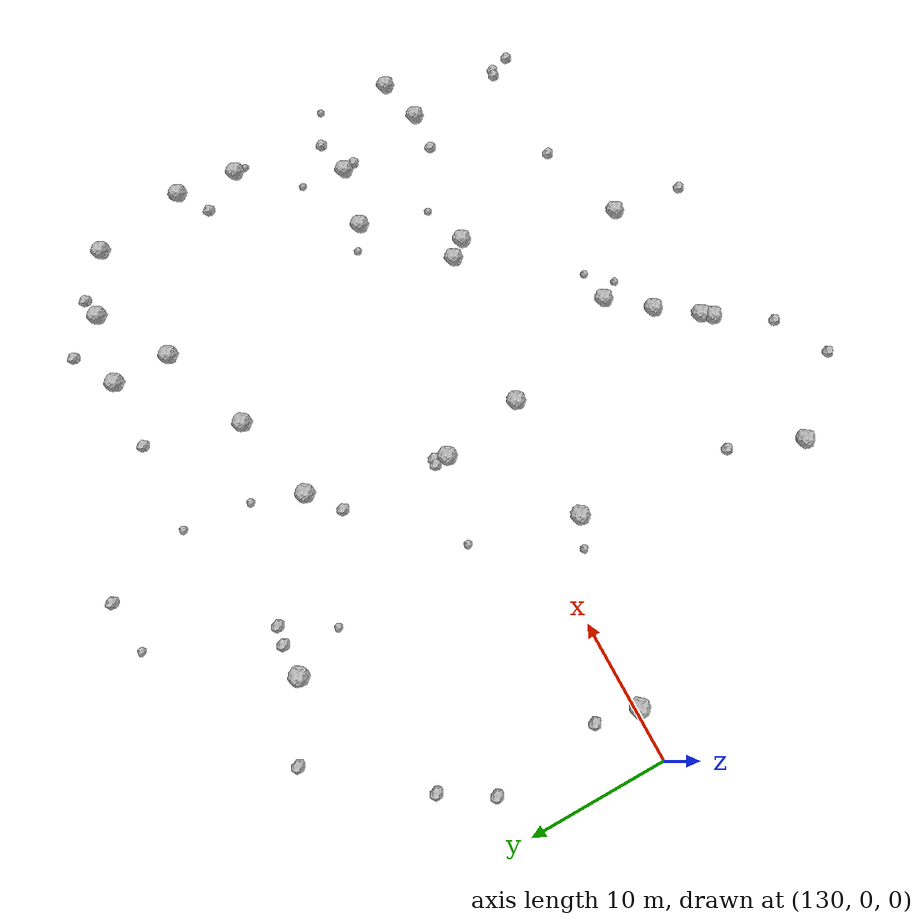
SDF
<sdf version="1.6">
 <world name="default">
  <include><uri>model://sun</uri></include>
  <model name="rock1_4_2">
   <include><uri>model://rock1</uri><pose>186.2464689613487 -7.301325389295236 0.5 0 0 0</pose></include>
  </model>
  <model name="rock1_4_3">
   <include><uri>model://rock1</uri><pose>171.64689725641176 22.413009952242632 0.5 0 0 0</pose></include>
  </model>
  <model name="rock1_4_4">
   <include><uri>model://rock1</uri><pose>167.00148505577474 -18.20192116742143 0.5 0 0 0</pose></include>
  </model>
  <model name="rock1_4_5">
   <include><uri>model://rock1</uri><pose>155.08395413666193 3.0549888798622717 0.5 0 0 0</pose></include>
  </model>
  <model name="rock1_4_6">
   <include><uri>model://rock1</uri><pose>164.35093658210803 15.23540274397623 0.5 0 0 0</pose></include>
  </model>
  <model name="rock1_4_7">
   <include><uri>model://rock1</uri><pose>169.21905474929548 -4.850321246496943 0.5 0 0 0</pose></include>
  </model>
  <model name="rock1_4_8">
   <include><uri>model://rock1</uri><pose>182.588270760284 19.384050497185257 0.5 0 0 0</pose></include>
  </model>
  <model name="rock1_4_9">
   <include><uri>model://rock1</uri><pose>146.80754964813917 -3.292090063591708 0.5 0 0 0</pose></include>
  </model>
  <model name="rock1_4_10">
   <include><uri>model://rock1</uri><pose>180.41627406185384 -0.7043355286861903 0.5 0 0 0</pose></include>
  </model>
  <model name="rock1_4_11">
   <include><uri>model://rock1</uri><pose>171.88849447410286 18.019917380509177 0.5 0 0 0</pose></include>
  </model>
  <model name="rock1_4_12">
   <include><uri>model://rock1</uri><pose>184.34053144238862 7.2152267753786035 0.5 0 0 0</pose></include>
  </model>
  <model name="rock1_4_13">
   <include><uri>model://rock1</uri><pose>146.00642176050798 19.023878575789723 0.5 0 0 0</pose></include>
  </model>
  <model name="rock1_4_14">
   <include><uri>model://rock1</uri><pose>184.59700736479746 12.078308972455083 0.5 0 0 0</pose></include>
  </model>
  <model name="rock1_4_15">
   <include><uri>model://rock1</uri><pose>144.09350727045214 -20.698135484319483 0.5 0 0 0</pose></include>
  </model>
  <model name="rock1_4_16">
   <include><uri>model://rock1</uri><pose>156.17243784660675 -19.369085509314875 0.5 0 0 0</pose></include>
  </model>
  <model name="rock1_4_17">
   <include><uri>model://rock1</uri><pose>177.44289908200625 21.620254565218545 0.5 0 0 0</pose></include>
  </model>
  <model name="rock1_4_18">
   <include><uri>model://rock1</uri><pose>156.51774521517984 -3.432915218404524 0.5 0 0 0</pose></include>
  </model>
  <model name="rock1_4_19">
   <include><uri>model://rock1</uri><pose>182.42266044583602 -8.135136150741005 0.5 0 0 0</pose></include>
  </model>
  <model name="rock1_4_20">
   <include><uri>model://rock1</uri><pose>175.28417053724445 0.3814168161132443 0.5 0 0 0</pose></include>
  </model>
  <model name="rock1_4_21">
   <include><uri>model://rock1</uri><pose>160.7313119396242 -13.460513612546677 0.5 0 0 0</pose></include>
  </model>
  <model name="rock1_4_22">
   <include><uri>model://rock1</uri><pose>170.36536571295912 -6.167824820451759 0.5 0 0 0</pose></include>
  </model>
  <model name="rock1_4_23">
   <include><uri>model://rock1</uri><pose>155.61729167370237 -20.11167653174723 0.5 0 0 0</pose></include>
  </model>
  <model name="rock1_4_24">
   <include><uri>model://rock1</uri><pose>133.65765308649003 -0.2149136522219024 0.5 0 0 0</pose></include>
  </model>
  <model name="rock1_4_25">
   <include><uri>model://rock1</uri><pose>157.3277387240569 13.38084580555902 0.5 0 0 0</pose></include>
  </model>
  <model name="rock1_4_26">
   <include><uri>model://rock1</uri><pose>158.27116242116472 -16.425373445181528 0.5 0 0 0</pose></include>
  </model>
  <model name="rock2_4_0">
   <include><uri>model://rock2</uri><pose>155.35001922294205 3.9928033350846377 0.3 0 0 0</pose></include>
  </model>
  <model name="rock2_4_1">
   <include><uri>model://rock2</uri><pose>174.132558881422 -16.13023922726648 0.3 0 0 0</pose></include>
  </model>
  <model name="rock2_4_2">
   <include><uri>model://rock2</uri><pose>180.66773425457114 -1.6617529767789527 0.3 0 0 0</pose></include>
  </model>
  <model name="rock2_4_3">
   <include><uri>model://rock2</uri><pose>174.9374516045398 24.452750905031074 0.3 0 0 0</pose></include>
  </model>
  <model name="rock2_4_4">
   <include><uri>model://rock2</uri><pose>184.02623053925657 -17.658734936669937 0.3 0 0 0</pose></include>
  </model>
  <model name="rock2_4_5">
   <include><uri>model://rock2</uri><pose>182.9571530582814 -15.873548408330818 0.3 0 0 0</pose></include>
  </model>
  <model name="rock2_4_6">
   <include><uri>model://rock2</uri><pose>148.38290555893968 19.123266469049177 0.3 0 0 0</pose></include>
  </model>
  <model name="rock2_4_7">
   <include><uri>model://rock2</uri><pose>179.09391950085342 -7.8932600802266535 0.3 0 0 0</pose></include>
  </model>
  <model name="rock2_4_8">
   <include><uri>model://rock2</uri><pose>134.1660585934325 2.9068815484296238 0.3 0 0 0</pose></include>
  </model>
  <model name="rock2_4_9">
   <include><uri>model://rock2</uri><pose>140.84009826670413 21.44909388405302 0.3 0 0 0</pose></include>
  </model>
  <model name="rock2_4_10">
   <include><uri>model://rock2</uri><pose>183.4366169725365 -16.02845349859192 0.3 0 0 0</pose></include>
  </model>
  <model name="rock2_4_11">
   <include><uri>model://rock2</uri><pose>182.49595950785707 19.3150578806222 0.3 0 0 0</pose></include>
  </model>
  <model name="rock2_4_12">
   <include><uri>model://rock2</uri><pose>166.0576216283341 22.35122658784377 0.3 0 0 0</pose></include>
  </model>
  <model name="rock2_4_13">
   <include><uri>model://rock2</uri><pose>146.10998808005812 -15.273588873812642 0.3 0 0 0</pose></include>
  </model>
  <model name="rock2_4_14">
   <include><uri>model://rock2</uri><pose>149.05193392368167 -26.25639621899061 0.3 0 0 0</pose></include>
  </model>
  <model name="rock2_4_15">
   <include><uri>model://rock2</uri><pose>149.702963055113 18.93457489149157 0.3 0 0 0</pose></include>
  </model>
  <model name="rock2_4_16">
   <include><uri>model://rock2</uri><pose>182.0180601181525 10.46104698147657 0.3 0 0 0</pose></include>
  </model>
  <model name="rock2_4_17">
   <include><uri>model://rock2</uri><pose>133.23664658873386 10.791487576115259 0.3 0 0 0</pose></include>
  </model>
  <model name="rock2_4_18">
   <include><uri>model://rock2</uri><pose>155.00650762971887 11.463930278922419 0.3 0 0 0</pose></include>
  </model>
  <model name="rock2_4_19">
   <include><uri>model://rock2</uri><pose>154.8958430708037 4.089806871987946 0.3 0 0 0</pose></include>
  </model>
  <model name="rock2_4_20">
   <include><uri>model://rock2</uri><pose>156.43421041354082 28.429039460350793 0.3 0 0 0</pose></include>
  </model>
  <model name="rock2_4_21">
   <include><uri>model://rock2</uri><pose>184.5327588286435 12.343055705664739 0.3 0 0 0</pose></include>
  </model>
  <model name="rock2_4_22">
   <include><uri>model://rock2</uri><pose>183.38740756186948 -0.07685520122383593 0.3 0 0 0</pose></include>
  </model>
  <model name="rock2_4_23">
   <include><uri>model://rock2</uri><pose>153.11602831475943 -24.140659303725247 0.3 0 0 0</pose></include>
  </model>
  <model name="rock2_4_24">
   <include><uri>model://rock2</uri><pose>179.04912986330578 22.015135480559223 0.3 0 0 0</pose></include>
  </model>
  <model name="rock2_4_25">
   <include><uri>model://rock2</uri><pose>166.4417468218809 -23.877877191737547 0.3 0 0 0</pose></include>
  </model>
  <model name="rock2_4_26">
   <include><uri>model://rock2</uri><pose>135.2119759331495 14.186077502435737 0.3 0 0 0</pose></include>
  </model>
  <model name="rock3_4_0">
   <include><uri>model://rock3</uri><pose>152.40947561456213 27.818986824356607 0.2 0 0 0</pose></include>
  </model>
  <model name="rock3_4_1">
   <include><uri>model://rock3</uri><pose>173.86931536847754 -5.041945569858811 0.2 0 0 0</pose></include>
  </model>
  <model name="rock3_4_2">
   <include><uri>model://rock3</uri><pose>148.6457958767106 4.709683121342607 0.2 0 0 0</pose></include>
  </model>
  <model name="rock3_4_3">
   <include><uri>model://rock3</uri><pose>163.24922921901776 -13.283148548299735 0.2 0 0 0</pose></include>
  </model>
  <model name="rock3_4_4">
   <include><uri>model://rock3</uri><pose>158.90518233229798 22.121140571236843 0.2 0 0 0</pose></include>
  </model>
  <model name="rock3_4_5">
   <include><uri>model://rock3</uri><pose>147.69086070135532 15.270249831344117 0.2 0 0 0</pose></include>
  </model>
  <model name="rock3_4_6">
   <include><uri>model://rock3</uri><pose>186.31692023469896 -1.4180672281080895 0.2 0 0 0</pose></include>
  </model>
  <model name="rock3_4_7">
   <include><uri>model://rock3</uri><pose>144.58539232389023 -2.3969107726265193 0.2 0 0 0</pose></include>
  </model>
  <model name="rock3_4_8">
   <include><uri>model://rock3</uri><pose>173.23084340898694 1.4727618934004276 0.2 0 0 0</pose></include>
  </model>
  <model name="rock3_4_9">
   <include><uri>model://rock3</uri><pose>158.52095570229653 17.093391252324984 0.2 0 0 0</pose></include>
  </model>
  <model name="rock3_4_10">
   <include><uri>model://rock3</uri><pose>161.6106951869741 -15.038439671947327 0.2 0 0 0</pose></include>
  </model>
  <model name="rock3_4_11">
   <include><uri>model://rock3</uri><pose>180.56765823166592 2.8584473920297953 0.2 0 0 0</pose></include>
  </model>
  <model name="rock3_4_12">
   <include><uri>model://rock3</uri><pose>184.38443341332516 6.284671738386855 0.2 0 0 0</pose></include>
  </model>
 </world>
</sdf>
